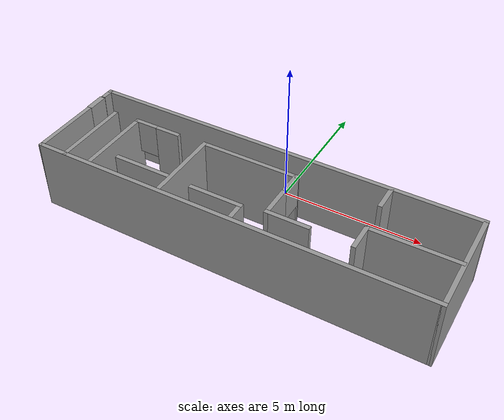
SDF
<?xml version='1.0'?>
<sdf version='1.7'>
  <model name='maza'>
    <pose>0.1 -2.2325 0 0 -0 0</pose>
    <link name='Door_0'>
      <collision name='Door_0_Collision'>
        <geometry>
          <box>
            <size>0.75 0.2 2.478</size>
          </box>
        </geometry>
        <pose>0 0 1.2385 0 -0 0</pose>
      </collision>
      <visual name='Door_0_Visual'>
        <pose>0 0 1.2385 0 -0 0</pose>
        <geometry>
          <box>
            <size>0.75 0.2 2.478</size>
          </box>
        </geometry>
        <material>
          <script>
            <uri>file://media/materials/scripts/gazebo.material</uri>
            <name>Gazebo/Grey</name>
          </script>
        </material>
      </visual>
      <pose>-6.8259 0.640871 0 0 0 -1.56059</pose>
    </link>
    <link name='Wall_13'>
      <collision name='Wall_13_Collision'>
        <geometry>
          <box>
            <size>3 0.15 2.5</size>
          </box>
        </geometry>
        <pose>0 0 1.25 0 -0 0</pose>
      </collision>
      <visual name='Wall_13_Visual'>
        <pose>0 0 1.25 0 -0 0</pose>
        <geometry>
          <box>
            <size>3 0.15 2.5</size>
          </box>
        </geometry>
        <material>
          <script>
            <uri>file://media/materials/scripts/gazebo.material</uri>
            <name>Gazebo/Grey</name>
          </script>
          <ambient>1 1 1 1</ambient>
        </material>
        <meta>
          <layer>0</layer>
        </meta>
      </visual>
      <pose>5.33184 -0.505458 0 0 -0 3.14159</pose>
    </link>
    <link name='Wall_14'>
      <collision name='Wall_14_Collision'>
        <geometry>
          <box>
            <size>1 0.15 2.5</size>
          </box>
        </geometry>
        <pose>0 0 1.25 0 -0 0</pose>
      </collision>
      <visual name='Wall_14_Visual'>
        <pose>0 0 1.25 0 -0 0</pose>
        <geometry>
          <box>
            <size>1 0.15 2.5</size>
          </box>
        </geometry>
        <material>
          <script>
            <uri>file://media/materials/scripts/gazebo.material</uri>
            <name>Gazebo/Grey</name>
          </script>
          <ambient>1 1 1 1</ambient>
        </material>
        <meta>
          <layer>0</layer>
        </meta>
      </visual>
      <pose>3.90684 -0.930458 0 0 -0 -1.5708</pose>
    </link>
    <link name='Wall_17'>
      <collision name='Wall_17_Collision'>
        <geometry>
          <box>
            <size>1 0.15 2.5</size>
          </box>
        </geometry>
        <pose>0 0 1.25 0 -0 0</pose>
      </collision>
      <visual name='Wall_17_Visual'>
        <pose>0 0 1.25 0 -0 0</pose>
        <geometry>
          <box>
            <size>1 0.15 2.5</size>
          </box>
        </geometry>
        <material>
          <script>
            <uri>file://media/materials/scripts/gazebo.material</uri>
            <name>Gazebo/Grey</name>
          </script>
          <ambient>1 1 1 1</ambient>
        </material>
        <meta>
          <layer>0</layer>
        </meta>
      </visual>
      <pose>3.88239 1.01626 0 0 -0 -1.5708</pose>
    </link>
    <link name='Wall_22'>
      <collision name='Wall_22_Collision'>
        <geometry>
          <box>
            <size>2.75 0.15 2.5</size>
          </box>
        </geometry>
        <pose>0 0 1.25 0 -0 0</pose>
      </collision>
      <visual name='Wall_22_Visual'>
        <pose>0 0 1.25 0 -0 0</pose>
        <geometry>
          <box>
            <size>2.75 0.15 2.5</size>
          </box>
        </geometry>
        <material>
          <script>
            <uri>file://media/materials/scripts/gazebo.material</uri>
            <name>Gazebo/Grey</name>
          </script>
          <ambient>1 1 1 1</ambient>
        </material>
        <meta>
          <layer>0</layer>
        </meta>
      </visual>
      <pose>-2.24674 -0.786471 0 0 -0 -1.5708</pose>
    </link>
    <link name='Wall_25'>
      <collision name='Wall_25_Collision'>
        <geometry>
          <box>
            <size>3.5 0.15 2.5</size>
          </box>
        </geometry>
        <pose>0 0 1.25 0 -0 0</pose>
      </collision>
      <visual name='Wall_25_Visual'>
        <pose>0 0 1.25 0 -0 0</pose>
        <geometry>
          <box>
            <size>3.5 0.15 2.5</size>
          </box>
        </geometry>
        <material>
          <script>
            <uri>file://media/materials/scripts/gazebo.material</uri>
            <name>Gazebo/Grey</name>
          </script>
          <ambient>1 1 1 1</ambient>
        </material>
        <meta>
          <layer>0</layer>
        </meta>
      </visual>
      <pose>-0.57174 0.513529 0 0 -0 0</pose>
    </link>
    <link name='Wall_26'>
      <pose>1.10326 -0.411471 0 0 -0 -1.5708</pose>
      <visual name='Wall_26_Visual_0'>
        <pose>-0.977083 0 1.25 0 -0 0</pose>
        <geometry>
          <box>
            <size>0.045835 0.15 2.5</size>
          </box>
        </geometry>
        <material>
          <script>
            <uri>file://media/materials/scripts/gazebo.material</uri>
            <name>Gazebo/Grey</name>
          </script>
          <ambient>1 1 1 1</ambient>
        </material>
        <meta>
          <layer>0</layer>
        </meta>
      </visual>
      <collision name='Wall_26_Collision_0'>
        <geometry>
          <box>
            <size>0.045835 0.15 2.5</size>
          </box>
        </geometry>
        <pose>-0.977083 0 1.25 0 -0 0</pose>
      </collision>
      <visual name='Wall_26_Visual_1'>
        <pose>0.022917 0 0.25 0 -0 0</pose>
        <geometry>
          <box>
            <size>1.95416 0.15 0.5</size>
          </box>
        </geometry>
        <material>
          <script>
            <uri>file://media/materials/scripts/gazebo.material</uri>
            <name>Gazebo/Grey</name>
          </script>
          <ambient>1 1 1 1</ambient>
        </material>
        <meta>
          <layer>0</layer>
        </meta>
      </visual>
      <collision name='Wall_26_Collision_1'>
        <geometry>
          <box>
            <size>1.95416 0.15 0.5</size>
          </box>
        </geometry>
        <pose>0.022917 0 0.25 0 -0 0</pose>
      </collision>
      <visual name='Wall_26_Visual_2'>
        <pose>0.422917 0 1.5 0 -0 0</pose>
        <geometry>
          <box>
            <size>1.15417 0.15 2</size>
          </box>
        </geometry>
        <material>
          <script>
            <uri>file://media/materials/scripts/gazebo.material</uri>
            <name>Gazebo/Grey</name>
          </script>
          <ambient>1 1 1 1</ambient>
        </material>
        <meta>
          <layer>0</layer>
        </meta>
      </visual>
      <collision name='Wall_26_Collision_2'>
        <geometry>
          <box>
            <size>1.15417 0.15 2</size>
          </box>
        </geometry>
        <pose>0.422917 0 1.5 0 -0 0</pose>
      </collision>
      <visual name='Wall_26_Visual_3'>
        <pose>-0.554165 0 1.9 0 -0 0</pose>
        <geometry>
          <box>
            <size>0.8 0.15 1.2</size>
          </box>
        </geometry>
        <material>
          <script>
            <uri>file://media/materials/scripts/gazebo.material</uri>
            <name>Gazebo/Grey</name>
          </script>
          <ambient>1 1 1 1</ambient>
        </material>
        <meta>
          <layer>0</layer>
        </meta>
      </visual>
      <collision name='Wall_26_Collision_3'>
        <geometry>
          <box>
            <size>0.8 0.15 1.2</size>
          </box>
        </geometry>
        <pose>-0.554165 0 1.9 0 -0 0</pose>
      </collision>
    </link>
    <link name='Wall_27'>
      <collision name='Wall_27_Collision'>
        <geometry>
          <box>
            <size>1.5 0.15 2.5</size>
          </box>
        </geometry>
        <pose>0 0 1.25 0 -0 0</pose>
      </collision>
      <visual name='Wall_27_Visual'>
        <pose>0 0 1.25 0 -0 0</pose>
        <geometry>
          <box>
            <size>1.5 0.15 2.5</size>
          </box>
        </geometry>
        <material>
          <script>
            <uri>file://media/materials/scripts/gazebo.material</uri>
            <name>Gazebo/Grey</name>
          </script>
          <ambient>1 1 1 1</ambient>
        </material>
        <meta>
          <layer>0</layer>
        </meta>
      </visual>
      <pose>1.77826 -1.33647 0 0 -0 0</pose>
    </link>
    <link name='Wall_30'>
      <collision name='Wall_30_Collision'>
        <geometry>
          <box>
            <size>2 0.15 2.5</size>
          </box>
        </geometry>
        <pose>0 0 1.25 0 -0 0</pose>
      </collision>
      <visual name='Wall_30_Visual'>
        <pose>0 0 1.25 0 -0 0</pose>
        <geometry>
          <box>
            <size>2 0.15 2.5</size>
          </box>
        </geometry>
        <material>
          <script>
            <uri>file://media/materials/scripts/gazebo.material</uri>
            <name>Gazebo/Grey</name>
          </script>
          <ambient>1 1 1 1</ambient>
        </material>
        <meta>
          <layer>0</layer>
        </meta>
      </visual>
      <pose>-3.31409 -1.43319 0 0 -0 0</pose>
    </link>
    <link name='Wall_32'>
      <pose>-4.1 0.4825 0 0 -0 0</pose>
      <visual name='Wall_32_Visual_0'>
        <pose>-0.839856 0 1.25 0 -0 0</pose>
        <geometry>
          <box>
            <size>0.070287 0.15 2.5</size>
          </box>
        </geometry>
        <material>
          <script>
            <uri>file://media/materials/scripts/gazebo.material</uri>
            <name>Gazebo/Grey</name>
          </script>
          <ambient>1 1 1 1</ambient>
        </material>
        <meta>
          <layer>0</layer>
        </meta>
      </visual>
      <collision name='Wall_32_Collision_0'>
        <geometry>
          <box>
            <size>0.070287 0.15 2.5</size>
          </box>
        </geometry>
        <pose>-0.839856 0 1.25 0 -0 0</pose>
      </collision>
      <visual name='Wall_32_Visual_1'>
        <pose>0.035144 0 0.25 0 -0 0</pose>
        <geometry>
          <box>
            <size>1.67971 0.15 0.5</size>
          </box>
        </geometry>
        <material>
          <script>
            <uri>file://media/materials/scripts/gazebo.material</uri>
            <name>Gazebo/Grey</name>
          </script>
          <ambient>1 1 1 1</ambient>
        </material>
        <meta>
          <layer>0</layer>
        </meta>
      </visual>
      <collision name='Wall_32_Collision_1'>
        <geometry>
          <box>
            <size>1.67971 0.15 0.5</size>
          </box>
        </geometry>
        <pose>0.035144 0 0.25 0 -0 0</pose>
      </collision>
      <visual name='Wall_32_Visual_2'>
        <pose>0.435144 0 1.5 0 -0 0</pose>
        <geometry>
          <box>
            <size>0.879713 0.15 2</size>
          </box>
        </geometry>
        <material>
          <script>
            <uri>file://media/materials/scripts/gazebo.material</uri>
            <name>Gazebo/Grey</name>
          </script>
          <ambient>1 1 1 1</ambient>
        </material>
        <meta>
          <layer>0</layer>
        </meta>
      </visual>
      <collision name='Wall_32_Collision_2'>
        <geometry>
          <box>
            <size>0.879713 0.15 2</size>
          </box>
        </geometry>
        <pose>0.435144 0 1.5 0 -0 0</pose>
      </collision>
      <visual name='Wall_32_Visual_3'>
        <pose>-0.404713 0 1.9 0 -0 0</pose>
        <geometry>
          <box>
            <size>0.8 0.15 1.2</size>
          </box>
        </geometry>
        <material>
          <script>
            <uri>file://media/materials/scripts/gazebo.material</uri>
            <name>Gazebo/Grey</name>
          </script>
          <ambient>1 1 1 1</ambient>
        </material>
        <meta>
          <layer>0</layer>
        </meta>
      </visual>
      <collision name='Wall_32_Collision_3'>
        <geometry>
          <box>
            <size>0.8 0.15 1.2</size>
          </box>
        </geometry>
        <pose>-0.404713 0 1.9 0 -0 0</pose>
      </collision>
    </link>
    <link name='Wall_39'>
      <collision name='Wall_39_Collision'>
        <geometry>
          <box>
            <size>0.75 0.15 2.5</size>
          </box>
        </geometry>
        <pose>0 0 1.25 0 -0 0</pose>
      </collision>
      <visual name='Wall_39_Visual'>
        <pose>0 0 1.25 0 -0 0</pose>
        <geometry>
          <box>
            <size>0.75 0.15 2.5</size>
          </box>
        </geometry>
        <material>
          <script>
            <uri>file://media/materials/scripts/gazebo.material</uri>
            <name>Gazebo/Grey</name>
          </script>
          <ambient>1 1 1 1</ambient>
        </material>
        <meta>
          <layer>0</layer>
        </meta>
      </visual>
      <pose>0.293121 -1.79403 0 0 -0 -1.5708</pose>
    </link>
    <link name='Wall_4'>
      <collision name='Wall_4_Collision'>
        <geometry>
          <box>
            <size>13.75 0.15 2.5</size>
          </box>
        </geometry>
        <pose>0 0 1.25 0 -0 0</pose>
      </collision>
      <visual name='Wall_4_Visual'>
        <pose>0 0 1.25 0 -0 0</pose>
        <geometry>
          <box>
            <size>13.75 0.15 2.5</size>
          </box>
        </geometry>
        <material>
          <script>
            <uri>file://media/materials/scripts/gazebo.material</uri>
            <name>Gazebo/Grey</name>
          </script>
          <ambient>1 1 1 1</ambient>
        </material>
        <meta>
          <layer>0</layer>
        </meta>
      </visual>
      <pose>-0 -2.1575 0 0 -0 0</pose>
    </link>
    <link name='Wall_41'>
      <collision name='Wall_41_Collision'>
        <geometry>
          <box>
            <size>1.86859 0.15 2.5</size>
          </box>
        </geometry>
        <pose>0 0 1.25 0 -0 0</pose>
      </collision>
      <visual name='Wall_41_Visual'>
        <pose>0 0 1.25 0 -0 0</pose>
        <geometry>
          <box>
            <size>1.86859 0.15 2.5</size>
          </box>
        </geometry>
        <material>
          <script>
            <uri>file://media/materials/scripts/gazebo.material</uri>
            <name>Gazebo/Grey</name>
          </script>
          <ambient>1 1 1 1</ambient>
        </material>
        <meta>
          <layer>0</layer>
        </meta>
      </visual>
      <pose>-0.566174 -1.49403 0 0 -0 0</pose>
    </link>
    <link name='Wall_43'>
      <collision name='Wall_43_Collision'>
        <geometry>
          <box>
            <size>2.75 0.15 2.5</size>
          </box>
        </geometry>
        <pose>0 0 1.25 0 -0 0</pose>
      </collision>
      <visual name='Wall_43_Visual'>
        <pose>0 0 1.25 0 -0 0</pose>
        <geometry>
          <box>
            <size>2.75 0.15 2.5</size>
          </box>
        </geometry>
        <material>
          <script>
            <uri>file://media/materials/scripts/gazebo.material</uri>
            <name>Gazebo/Grey</name>
          </script>
          <ambient>1 1 1 1</ambient>
        </material>
        <meta>
          <layer>0</layer>
        </meta>
      </visual>
      <pose>-5.83601 -0.853966 0 0 -0 -1.5708</pose>
    </link>
    <link name='Wall_45'>
      <collision name='Wall_45_Collision'>
        <geometry>
          <box>
            <size>2.5 0.15 2.5</size>
          </box>
        </geometry>
        <pose>0 0 1.25 0 -0 0</pose>
      </collision>
      <visual name='Wall_45_Visual'>
        <pose>0 0 1.25 0 -0 0</pose>
        <geometry>
          <box>
            <size>2.5 0.15 2.5</size>
          </box>
        </geometry>
        <material>
          <script>
            <uri>file://media/materials/scripts/gazebo.material</uri>
            <name>Gazebo/Grey</name>
          </script>
          <ambient>1 1 1 1</ambient>
        </material>
        <meta>
          <layer>0</layer>
        </meta>
      </visual>
      <pose>-6.8 -0.9825 0 0 -0 1.5708</pose>
    </link>
    <link name='Wall_47'>
      <collision name='Wall_47_Collision'>
        <geometry>
          <box>
            <size>0.5 0.15 2.5</size>
          </box>
        </geometry>
        <pose>0 0 1.25 0 -0 0</pose>
      </collision>
      <visual name='Wall_47_Visual'>
        <pose>0 0 1.25 0 -0 0</pose>
        <geometry>
          <box>
            <size>0.5 0.15 2.5</size>
          </box>
        </geometry>
        <material>
          <script>
            <uri>file://media/materials/scripts/gazebo.material</uri>
            <name>Gazebo/Grey</name>
          </script>
          <ambient>1 1 1 1</ambient>
        </material>
        <meta>
          <layer>0</layer>
        </meta>
      </visual>
      <pose>-6.8 1.2675 0 0 -0 -1.5708</pose>
    </link>
    <link name='Wall_5'>
      <collision name='Wall_5_Collision'>
        <geometry>
          <box>
            <size>3.75 0.15 2.5</size>
          </box>
        </geometry>
        <pose>0 0 1.25 0 -0 0</pose>
      </collision>
      <visual name='Wall_5_Visual'>
        <pose>0 0 1.25 0 -0 0</pose>
        <geometry>
          <box>
            <size>3.75 0.15 2.5</size>
          </box>
        </geometry>
        <material>
          <script>
            <uri>file://media/materials/scripts/gazebo.material</uri>
            <name>Gazebo/Grey</name>
          </script>
          <ambient>1 1 1 1</ambient>
        </material>
        <meta>
          <layer>0</layer>
        </meta>
      </visual>
      <pose>6.8 -0.3575 0 0 -0 1.5708</pose>
    </link>
    <link name='Wall_6'>
      <collision name='Wall_6_Collision'>
        <geometry>
          <box>
            <size>13.75 0.15 2.5</size>
          </box>
        </geometry>
        <pose>0 0 1.25 0 -0 0</pose>
      </collision>
      <visual name='Wall_6_Visual'>
        <pose>0 0 1.25 0 -0 0</pose>
        <geometry>
          <box>
            <size>13.75 0.15 2.5</size>
          </box>
        </geometry>
        <material>
          <script>
            <uri>file://media/materials/scripts/gazebo.material</uri>
            <name>Gazebo/Grey</name>
          </script>
          <ambient>1 1 1 1</ambient>
        </material>
        <meta>
          <layer>0</layer>
        </meta>
      </visual>
      <pose>-0 1.4425 0 0 -0 3.14159</pose>
    </link>
    <link name='Wall_8'>
      <collision name='Wall_8_Collision'>
        <geometry>
          <box>
            <size>2.75 0.15 2.5</size>
          </box>
        </geometry>
        <pose>0 0 1.25 0 -0 0</pose>
      </collision>
      <visual name='Wall_8_Visual'>
        <pose>0 0 1.25 0 -0 0</pose>
        <geometry>
          <box>
            <size>2.75 0.15 2.5</size>
          </box>
        </geometry>
        <material>
          <script>
            <uri>file://media/materials/scripts/gazebo.material</uri>
            <name>Gazebo/Grey</name>
          </script>
          <ambient>1 1 1 1</ambient>
        </material>
        <meta>
          <layer>0</layer>
        </meta>
      </visual>
      <pose>-4.9 -0.8175 0 0 -0 1.5708</pose>
    </link>
    <static>1</static>
  </model>
</sdf>
